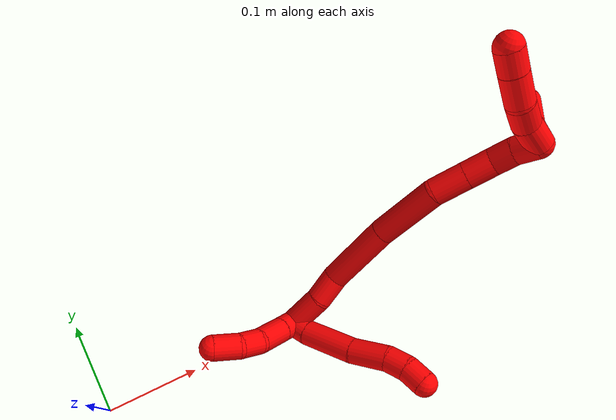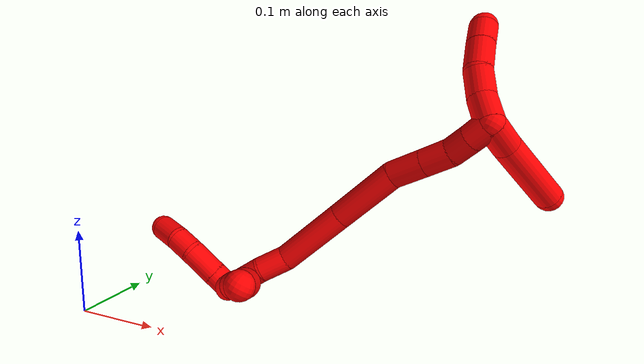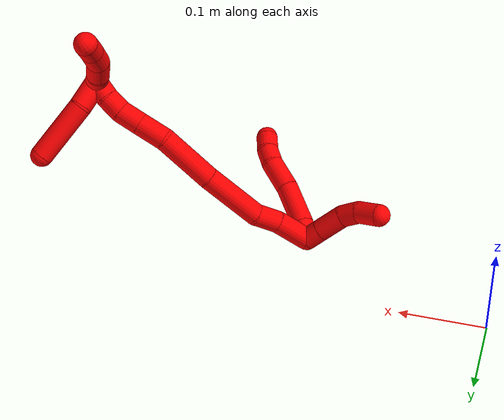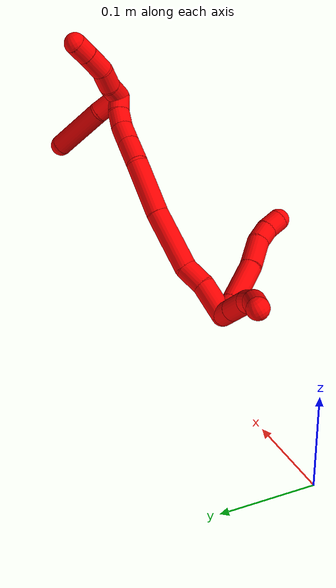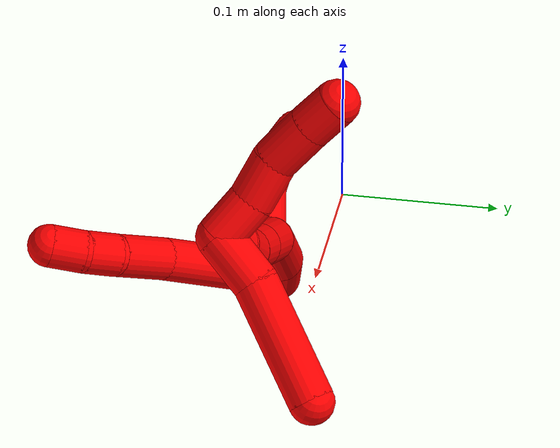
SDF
<sdf version="1.7">
 <world name="default">
  <model name="photoneo_s_sensor">
   <static>1</static>
   <pose>0 0 2 1.57079 1.57079 3.14159</pose>
   <link name="link">
    <inertial><mass>0.1</mass></inertial>
    <sensor name="sensor" type="depth">
     <update_rate>30</update_rate>
     <camera>
      <horizontal_fov>1.22</horizontal_fov>
      <image><width>1920</width><height>1200</height><format>B8G8R8</format></image>
      <clip><near>0.1</near><far>4</far></clip>
      <depth_camera><output>points</output></depth_camera>
     </camera>
     <plugin name="camera_plugin" filename="libgazebo_ros_depth_camera.so">
      <baseline>0.2</baseline>
      <alwaysOn>1</alwaysOn>
      <updateRate>0.0</updateRate>
      <cameraName>camera_ir</cameraName>
      <imageTopicName>/camera/color/image_raw</imageTopicName>
      <cameraInfoTopicName>/camera/color/camera_info</cameraInfoTopicName>
      <depthImageTopicName>/camera/depth/image_raw</depthImageTopicName>
      <depthImageCameraInfoTopicName>/camera/depth/camera_info</depthImageCameraInfoTopicName>
      <pointCloudTopicName>/camera/depth/points</pointCloudTopicName>
      <frameName>fr_optical</frameName>
      <pointCloudCutoff>0.1</pointCloudCutoff>
      <pointCloudCutoffMax>2.0</pointCloudCutoffMax>
      <distortionK1>0</distortionK1>
      <distortionK2>0</distortionK2>
      <distortionK3>0</distortionK3>
      <distortionT1>0</distortionT1>
      <distortionT2>0</distortionT2>
      <CxPrime>0</CxPrime>
      <Cx>0</Cx>
      <Cy>0</Cy>
      <focalLength>0</focalLength>
      <hackBaseline>0</hackBaseline>
     </plugin>
    </sensor>
   </link>
  </model>
  <model name="bin">
   <static>1</static>
   <link name="bottom">
    <collision name="collision-bottom">
     <pose>0 0 -0.01 0 -0 0</pose>
     <geometry><box><size>0.8 0.6 0.02</size></box></geometry>
     <surface>
      <friction><ode><mu>100</mu><mu2>100</mu2></ode></friction>
      <contact><collide_bitmask>65535</collide_bitmask></contact>
     </surface>
    </collision>
   </link>
   <link name="west_wall">
    <collision name="collision-west_wall">
     <pose>-0.41 0 0.1 0 -0 0</pose>
     <geometry><box><size>0.02 0.6 0.2</size></box></geometry>
     <surface>
      <friction><ode><mu>100</mu><mu2>100</mu2></ode></friction>
      <contact><collide_bitmask>65535</collide_bitmask></contact>
     </surface>
    </collision>
   </link>
   <link name="east_wall">
    <collision name="collision-east_wall">
     <pose>0.41 0 0.1 0 -0 0</pose>
     <geometry><box><size>0.02 0.6 0.2</size></box></geometry>
     <surface>
      <friction><ode><mu>100</mu><mu2>100</mu2></ode></friction>
      <contact><collide_bitmask>65535</collide_bitmask></contact>
     </surface>
    </collision>
   </link>
   <link name="south_wall">
    <collision name="collision-south_wall">
     <pose>0 -0.31 0.1 0 -0 0</pose>
     <geometry><box><size>0.8 0.02 0.2</size></box></geometry>
     <surface>
      <friction><ode><mu>100</mu><mu2>100</mu2></ode></friction>
      <contact><collide_bitmask>65535</collide_bitmask></contact>
     </surface>
    </collision>
   </link>
   <link name="north_wall">
    <collision name="collision-north_wall">
     <pose>0 0.31 0.1 0 -0 0</pose>
     <geometry><box><size>0.8 0.02 0.2</size></box></geometry>
     <surface>
      <friction><ode><mu>100</mu><mu2>100</mu2></ode></friction>
      <contact><collide_bitmask>65535</collide_bitmask></contact>
     </surface>
    </collision>
   </link>
  </model>
  <model name="2">
   <static>0</static>
   <link name="2">
    <collision name="collision-cylinder-e_1_2_8">
     <pose>0.00474 -0.008796 0.002156 1.33038 0.482184 0.381073</pose>
     <geometry><cylinder><radius>0.0125</radius><length>0.020443</length></cylinder></geometry>
     <surface>
      <friction><ode><mu>1.16</mu><mu2>1.16</mu2><slip1>0</slip1><slip2>0</slip2></ode></friction>
      <contact><ode><kp>1e+06</kp><kd>1</kd><max_vel>0</max_vel><min_depth>0.001</min_depth></ode></contact>
     </surface>
    </collision>
    <visual name="visual-cylinder-e_1_2_8">
     <pose>0.00474 -0.008796 0.002156 1.33038 0.482184 0.381073</pose>
     <geometry><cylinder><radius>0.0125</radius><length>0.020443</length></cylinder></geometry>
     <material><ambient>1 0 0 1</ambient></material>
    </visual>
    <collision name="collision-cylinder-e_2_8_9">
     <pose>0.02344 -0.037795 0.012237 1.19704 0.571635 0.395568</pose>
     <geometry><cylinder><radius>0.0125</radius><length>0.051609</length></cylinder></geometry>
     <surface>
      <friction><ode><mu>1.16</mu><mu2>1.16</mu2><slip1>0</slip1><slip2>0</slip2></ode></friction>
      <contact><ode><kp>1e+06</kp><kd>1</kd><max_vel>0</max_vel><min_depth>0.001</min_depth></ode></contact>
     </surface>
    </collision>
    <visual name="visual-cylinder-e_2_8_9">
     <pose>0.02344 -0.037795 0.012237 1.19704 0.571635 0.395568</pose>
     <geometry><cylinder><radius>0.0125</radius><length>0.051609</length></cylinder></geometry>
     <material><ambient>1 0 0 1</ambient></material>
    </visual>
    <collision name="collision-cylinder-e_3_9_10">
     <pose>0.048675 -0.070449 0.027452 1.04099 0.663289 0.38978</pose>
     <geometry><cylinder><radius>0.0125</radius><length>0.036621</length></cylinder></geometry>
     <surface>
      <friction><ode><mu>1.16</mu><mu2>1.16</mu2><slip1>0</slip1><slip2>0</slip2></ode></friction>
      <contact><ode><kp>1e+06</kp><kd>1</kd><max_vel>0</max_vel><min_depth>0.001</min_depth></ode></contact>
     </surface>
    </collision>
    <visual name="visual-cylinder-e_3_9_10">
     <pose>0.048675 -0.070449 0.027452 1.04099 0.663289 0.38978</pose>
     <geometry><cylinder><radius>0.0125</radius><length>0.036621</length></cylinder></geometry>
     <material><ambient>1 0 0 1</ambient></material>
    </visual>
    <collision name="collision-cylinder-e_4_10_11">
     <pose>0.065453 -0.091426 0.036932 1.31953 0.558816 0.437994</pose>
     <geometry><cylinder><radius>0.0125</radius><length>0.020766</length></cylinder></geometry>
     <surface>
      <friction><ode><mu>1.16</mu><mu2>1.16</mu2><slip1>0</slip1><slip2>0</slip2></ode></friction>
      <contact><ode><kp>1e+06</kp><kd>1</kd><max_vel>0</max_vel><min_depth>0.001</min_depth></ode></contact>
     </surface>
    </collision>
    <visual name="visual-cylinder-e_4_10_11">
     <pose>0.065453 -0.091426 0.036932 1.31953 0.558816 0.437994</pose>
     <geometry><cylinder><radius>0.0125</radius><length>0.020766</length></cylinder></geometry>
     <material><ambient>1 0 0 1</ambient></material>
    </visual>
    <collision name="collision-cylinder-e_5_11_6">
     <pose>0.074817 -0.109473 0.039546 1.52622 0.384709 0.368318</pose>
     <geometry><cylinder><radius>0.0125</radius><length>0.020561</length></cylinder></geometry>
     <surface>
      <friction><ode><mu>1.16</mu><mu2>1.16</mu2><slip1>0</slip1><slip2>0</slip2></ode></friction>
      <contact><ode><kp>1e+06</kp><kd>1</kd><max_vel>0</max_vel><min_depth>0.001</min_depth></ode></contact>
     </surface>
    </collision>
    <visual name="visual-cylinder-e_5_11_6">
     <pose>0.074817 -0.109473 0.039546 1.52622 0.384709 0.368318</pose>
     <geometry><cylinder><radius>0.0125</radius><length>0.020561</length></cylinder></geometry>
     <material><ambient>1 0 0 1</ambient></material>
    </visual>
    <collision name="collision-cylinder-e_1_2_12">
     <pose>-0.008763 -0.004599 0.00241 1.08813 -1.03596 -0.663999</pose>
     <geometry><cylinder><radius>0.0125</radius><length>0.020371</length></cylinder></geometry>
     <surface>
      <friction><ode><mu>1.16</mu><mu2>1.16</mu2><slip1>0</slip1><slip2>0</slip2></ode></friction>
      <contact><ode><kp>1e+06</kp><kd>1</kd><max_vel>0</max_vel><min_depth>0.001</min_depth></ode></contact>
     </surface>
    </collision>
    <visual name="visual-cylinder-e_1_2_12">
     <pose>-0.008763 -0.004599 0.00241 1.08813 -1.03596 -0.663999</pose>
     <geometry><cylinder><radius>0.0125</radius><length>0.020371</length></cylinder></geometry>
     <material><ambient>1 0 0 1</ambient></material>
    </visual>
    <collision name="collision-cylinder-e_2_12_13">
     <pose>-0.03148 -0.016183 0.008685 1.06538 -1.05104 -0.658848</pose>
     <geometry><cylinder><radius>0.0125</radius><length>0.032153</length></cylinder></geometry>
     <surface>
      <friction><ode><mu>1.16</mu><mu2>1.16</mu2><slip1>0</slip1><slip2>0</slip2></ode></friction>
      <contact><ode><kp>1e+06</kp><kd>1</kd><max_vel>0</max_vel><min_depth>0.001</min_depth></ode></contact>
     </surface>
    </collision>
    <visual name="visual-cylinder-e_2_12_13">
     <pose>-0.03148 -0.016183 0.008685 1.06538 -1.05104 -0.658848</pose>
     <geometry><cylinder><radius>0.0125</radius><length>0.032153</length></cylinder></geometry>
     <material><ambient>1 0 0 1</ambient></material>
    </visual>
    <collision name="collision-cylinder-e_3_13_14">
     <pose>-0.055857 -0.024777 0.01387 0.883674 -1.3739 -0.740216</pose>
     <geometry><cylinder><radius>0.0125</radius><length>0.021258</length></cylinder></geometry>
     <surface>
      <friction><ode><mu>1.16</mu><mu2>1.16</mu2><slip1>0</slip1><slip2>0</slip2></ode></friction>
      <contact><ode><kp>1e+06</kp><kd>1</kd><max_vel>0</max_vel><min_depth>0.001</min_depth></ode></contact>
     </surface>
    </collision>
    <visual name="visual-cylinder-e_3_13_14">
     <pose>-0.055857 -0.024777 0.01387 0.883674 -1.3739 -0.740216</pose>
     <geometry><cylinder><radius>0.0125</radius><length>0.021258</length></cylinder></geometry>
     <material><ambient>1 0 0 1</ambient></material>
    </visual>
    <collision name="collision-cylinder-e_4_14_5">
     <pose>-0.079247 -0.024501 0.014781 -1.78401 -1.42321 1.63746</pose>
     <geometry><cylinder><radius>0.0125</radius><length>0.026218</length></cylinder></geometry>
     <surface>
      <friction><ode><mu>1.16</mu><mu2>1.16</mu2><slip1>0</slip1><slip2>0</slip2></ode></friction>
      <contact><ode><kp>1e+06</kp><kd>1</kd><max_vel>0</max_vel><min_depth>0.001</min_depth></ode></contact>
     </surface>
    </collision>
    <visual name="visual-cylinder-e_4_14_5">
     <pose>-0.079247 -0.024501 0.014781 -1.78401 -1.42321 1.63746</pose>
     <geometry><cylinder><radius>0.0125</radius><length>0.026218</length></cylinder></geometry>
     <material><ambient>1 0 0 1</ambient></material>
    </visual>
    <collision name="collision-cylinder-e_1_2_15">
     <pose>0.010739 -5.9e-05 0.016848 0.003511 0.567475 0.001024</pose>
     <geometry><cylinder><radius>0.0125</radius><length>0.03996</length></cylinder></geometry>
     <surface>
      <friction><ode><mu>1.16</mu><mu2>1.16</mu2><slip1>0</slip1><slip2>0</slip2></ode></friction>
      <contact><ode><kp>1e+06</kp><kd>1</kd><max_vel>0</max_vel><min_depth>0.001</min_depth></ode></contact>
     </surface>
    </collision>
    <visual name="visual-cylinder-e_1_2_15">
     <pose>0.010739 -5.9e-05 0.016848 0.003511 0.567475 0.001024</pose>
     <geometry><cylinder><radius>0.0125</radius><length>0.03996</length></cylinder></geometry>
     <material><ambient>1 0 0 1</ambient></material>
    </visual>
    <collision name="collision-cylinder-e_2_15_16">
     <pose>0.028866 0.002968 0.04516 -0.262992 0.556603 -0.075541</pose>
     <geometry><cylinder><radius>0.0125</radius><length>0.027965</length></cylinder></geometry>
     <surface>
      <friction><ode><mu>1.16</mu><mu2>1.16</mu2><slip1>0</slip1><slip2>0</slip2></ode></friction>
      <contact><ode><kp>1e+06</kp><kd>1</kd><max_vel>0</max_vel><min_depth>0.001</min_depth></ode></contact>
     </surface>
    </collision>
    <visual name="visual-cylinder-e_2_15_16">
     <pose>0.028866 0.002968 0.04516 -0.262992 0.556603 -0.075541</pose>
     <geometry><cylinder><radius>0.0125</radius><length>0.027965</length></cylinder></geometry>
     <material><ambient>1 0 0 1</ambient></material>
    </visual>
    <collision name="collision-cylinder-e_3_16_17">
     <pose>0.051417 0.00336 0.087916 0.085899 0.449807 0.019663</pose>
     <geometry><cylinder><radius>0.0125</radius><length>0.069755</length></cylinder></geometry>
     <surface>
      <friction><ode><mu>1.16</mu><mu2>1.16</mu2><slip1>0</slip1><slip2>0</slip2></ode></friction>
      <contact><ode><kp>1e+06</kp><kd>1</kd><max_vel>0</max_vel><min_depth>0.001</min_depth></ode></contact>
     </surface>
    </collision>
    <visual name="visual-cylinder-e_3_16_17">
     <pose>0.051417 0.00336 0.087916 0.085899 0.449807 0.019663</pose>
     <geometry><cylinder><radius>0.0125</radius><length>0.069755</length></cylinder></geometry>
     <material><ambient>1 0 0 1</ambient></material>
    </visual>
    <collision name="collision-cylinder-e_4_17_18">
     <pose>0.081375 -0.004791 0.147069 0.193411 0.480386 0.04751</pose>
     <geometry><cylinder><radius>0.0125</radius><length>0.064026</length></cylinder></geometry>
     <surface>
      <friction><ode><mu>1.16</mu><mu2>1.16</mu2><slip1>0</slip1><slip2>0</slip2></ode></friction>
      <contact><ode><kp>1e+06</kp><kd>1</kd><max_vel>0</max_vel><min_depth>0.001</min_depth></ode></contact>
     </surface>
    </collision>
    <visual name="visual-cylinder-e_4_17_18">
     <pose>0.081375 -0.004791 0.147069 0.193411 0.480386 0.04751</pose>
     <geometry><cylinder><radius>0.0125</radius><length>0.064026</length></cylinder></geometry>
     <material><ambient>1 0 0 1</ambient></material>
    </visual>
    <collision name="collision-cylinder-e_5_18_19">
     <pose>0.107314 -0.012885 0.185717 0.239748 0.787183 0.099954</pose>
     <geometry><cylinder><radius>0.0125</radius><length>0.031467</length></cylinder></geometry>
     <surface>
      <friction><ode><mu>1.16</mu><mu2>1.16</mu2><slip1>0</slip1><slip2>0</slip2></ode></friction>
      <contact><ode><kp>1e+06</kp><kd>1</kd><max_vel>0</max_vel><min_depth>0.001</min_depth></ode></contact>
     </surface>
    </collision>
    <visual name="visual-cylinder-e_5_18_19">
     <pose>0.107314 -0.012885 0.185717 0.239748 0.787183 0.099954</pose>
     <geometry><cylinder><radius>0.0125</radius><length>0.031467</length></cylinder></geometry>
     <material><ambient>1 0 0 1</ambient></material>
    </visual>
    <collision name="collision-cylinder-e_6_19_20">
     <pose>0.127345 -0.017709 0.205226 0.245642 0.77947 0.10132</pose>
     <geometry><cylinder><radius>0.0125</radius><length>0.025282</length></cylinder></geometry>
     <surface>
      <friction><ode><mu>1.16</mu><mu2>1.16</mu2><slip1>0</slip1><slip2>0</slip2></ode></friction>
      <contact><ode><kp>1e+06</kp><kd>1</kd><max_vel>0</max_vel><min_depth>0.001</min_depth></ode></contact>
     </surface>
    </collision>
    <visual name="visual-cylinder-e_6_19_20">
     <pose>0.127345 -0.017709 0.205226 0.245642 0.77947 0.10132</pose>
     <geometry><cylinder><radius>0.0125</radius><length>0.025282</length></cylinder></geometry>
     <material><ambient>1 0 0 1</ambient></material>
    </visual>
    <collision name="collision-cylinder-e_7_20_21">
     <pose>0.141677 -0.023226 0.222177 0.384571 0.550266 0.109809</pose>
     <geometry><cylinder><radius>0.0125</radius><length>0.020831</length></cylinder></geometry>
     <surface>
      <friction><ode><mu>1.16</mu><mu2>1.16</mu2><slip1>0</slip1><slip2>0</slip2></ode></friction>
      <contact><ode><kp>1e+06</kp><kd>1</kd><max_vel>0</max_vel><min_depth>0.001</min_depth></ode></contact>
     </surface>
    </collision>
    <visual name="visual-cylinder-e_7_20_21">
     <pose>0.141677 -0.023226 0.222177 0.384571 0.550266 0.109809</pose>
     <geometry><cylinder><radius>0.0125</radius><length>0.020831</length></cylinder></geometry>
     <material><ambient>1 0 0 1</ambient></material>
    </visual>
    <collision name="collision-cylinder-e_8_21_1">
     <pose>0.152492 -0.031747 0.237583 0.626177 0.544982 0.18044</pose>
     <geometry><cylinder><radius>0.0125</radius><length>0.020715</length></cylinder></geometry>
     <surface>
      <friction><ode><mu>1.16</mu><mu2>1.16</mu2><slip1>0</slip1><slip2>0</slip2></ode></friction>
      <contact><ode><kp>1e+06</kp><kd>1</kd><max_vel>0</max_vel><min_depth>0.001</min_depth></ode></contact>
     </surface>
    </collision>
    <visual name="visual-cylinder-e_8_21_1">
     <pose>0.152492 -0.031747 0.237583 0.626177 0.544982 0.18044</pose>
     <geometry><cylinder><radius>0.0125</radius><length>0.020715</length></cylinder></geometry>
     <material><ambient>1 0 0 1</ambient></material>
    </visual>
    <collision name="collision-cylinder-e_1_1_22">
     <pose>0.148675 -0.033838 0.253557 -0.338807 -0.777764 0.13994</pose>
     <geometry><cylinder><radius>0.0125</radius><length>0.026182</length></cylinder></geometry>
     <surface>
      <friction><ode><mu>1.16</mu><mu2>1.16</mu2><slip1>0</slip1><slip2>0</slip2></ode></friction>
      <contact><ode><kp>1e+06</kp><kd>1</kd><max_vel>0</max_vel><min_depth>0.001</min_depth></ode></contact>
     </surface>
    </collision>
    <visual name="visual-cylinder-e_1_1_22">
     <pose>0.148675 -0.033838 0.253557 -0.338807 -0.777764 0.13994</pose>
     <geometry><cylinder><radius>0.0125</radius><length>0.026182</length></cylinder></geometry>
     <material><ambient>1 0 0 1</ambient></material>
    </visual>
    <collision name="collision-cylinder-e_2_22_23">
     <pose>0.13182 -0.030267 0.272514 -0.046269 -0.646059 0.015491</pose>
     <geometry><cylinder><radius>0.0125</radius><length>0.025477</length></cylinder></geometry>
     <surface>
      <friction><ode><mu>1.16</mu><mu2>1.16</mu2><slip1>0</slip1><slip2>0</slip2></ode></friction>
      <contact><ode><kp>1e+06</kp><kd>1</kd><max_vel>0</max_vel><min_depth>0.001</min_depth></ode></contact>
     </surface>
    </collision>
    <visual name="visual-cylinder-e_2_22_23">
     <pose>0.13182 -0.030267 0.272514 -0.046269 -0.646059 0.015491</pose>
     <geometry><cylinder><radius>0.0125</radius><length>0.025477</length></cylinder></geometry>
     <material><ambient>1 0 0 1</ambient></material>
    </visual>
    <collision name="collision-cylinder-e_3_23_24">
     <pose>0.117975 -0.025829 0.294365 -0.327211 -0.463883 0.077942</pose>
     <geometry><cylinder><radius>0.0125</radius><length>0.027608</length></cylinder></geometry>
     <surface>
      <friction><ode><mu>1.16</mu><mu2>1.16</mu2><slip1>0</slip1><slip2>0</slip2></ode></friction>
      <contact><ode><kp>1e+06</kp><kd>1</kd><max_vel>0</max_vel><min_depth>0.001</min_depth></ode></contact>
     </surface>
    </collision>
    <visual name="visual-cylinder-e_3_23_24">
     <pose>0.117975 -0.025829 0.294365 -0.327211 -0.463883 0.077942</pose>
     <geometry><cylinder><radius>0.0125</radius><length>0.027608</length></cylinder></geometry>
     <material><ambient>1 0 0 1</ambient></material>
    </visual>
    <collision name="collision-cylinder-e_4_24_4">
     <pose>0.107451 -0.018528 0.314855 -0.362033 -0.432818 0.080431</pose>
     <geometry><cylinder><radius>0.0125</radius><length>0.020733</length></cylinder></geometry>
     <surface>
      <friction><ode><mu>1.16</mu><mu2>1.16</mu2><slip1>0</slip1><slip2>0</slip2></ode></friction>
      <contact><ode><kp>1e+06</kp><kd>1</kd><max_vel>0</max_vel><min_depth>0.001</min_depth></ode></contact>
     </surface>
    </collision>
    <visual name="visual-cylinder-e_4_24_4">
     <pose>0.107451 -0.018528 0.314855 -0.362033 -0.432818 0.080431</pose>
     <geometry><cylinder><radius>0.0125</radius><length>0.020733</length></cylinder></geometry>
     <material><ambient>1 0 0 1</ambient></material>
    </visual>
    <collision name="collision-cylinder-e_1_1_25">
     <pose>0.16376 -0.022714 0.242214 -1.7479 0.387573 -0.46066</pose>
     <geometry><cylinder><radius>0.0125</radius><length>0.031215</length></cylinder></geometry>
     <surface>
      <friction><ode><mu>1.16</mu><mu2>1.16</mu2><slip1>0</slip1><slip2>0</slip2></ode></friction>
      <contact><ode><kp>1e+06</kp><kd>1</kd><max_vel>0</max_vel><min_depth>0.001</min_depth></ode></contact>
     </surface>
    </collision>
    <visual name="visual-cylinder-e_1_1_25">
     <pose>0.16376 -0.022714 0.242214 -1.7479 0.387573 -0.46066</pose>
     <geometry><cylinder><radius>0.0125</radius><length>0.031215</length></cylinder></geometry>
     <material><ambient>1 0 0 1</ambient></material>
    </visual>
    <collision name="collision-cylinder-e_2_25_3">
     <pose>0.189434 0.018589 0.23202 -1.84606 0.612585 -0.791738</pose>
     <geometry><cylinder><radius>0.0125</radius><length>0.068785</length></cylinder></geometry>
     <surface>
      <friction><ode><mu>1.16</mu><mu2>1.16</mu2><slip1>0</slip1><slip2>0</slip2></ode></friction>
      <contact><ode><kp>1e+06</kp><kd>1</kd><max_vel>0</max_vel><min_depth>0.001</min_depth></ode></contact>
     </surface>
    </collision>
    <visual name="visual-cylinder-e_2_25_3">
     <pose>0.189434 0.018589 0.23202 -1.84606 0.612585 -0.791738</pose>
     <geometry><cylinder><radius>0.0125</radius><length>0.068785</length></cylinder></geometry>
     <material><ambient>1 0 0 1</ambient></material>
    </visual>
    <collision name="collision-sphere-3">
     <pose>0.209209 0.045669 0.224372 0 -0 0</pose>
     <geometry><sphere><radius>0.0125</radius></sphere></geometry>
     <surface>
      <friction><ode><mu>1.16</mu><mu2>1.16</mu2><slip1>0</slip1><slip2>0</slip2></ode></friction>
      <contact><ode><kp>1e+06</kp><kd>1</kd><max_vel>0</max_vel><min_depth>0.001</min_depth></ode></contact>
     </surface>
    </collision>
    <visual name="visual-sphere-3">
     <pose>0.209209 0.045669 0.224372 0 -0 0</pose>
     <geometry><sphere><radius>0.0125</radius></sphere></geometry>
     <material><ambient>1 0 0 1</ambient></material>
    </visual>
    <collision name="collision-sphere-25">
     <pose>0.169659 -0.00849 0.239668 0 -0 0</pose>
     <geometry><sphere><radius>0.0125</radius></sphere></geometry>
     <surface>
      <friction><ode><mu>1.16</mu><mu2>1.16</mu2><slip1>0</slip1><slip2>0</slip2></ode></friction>
      <contact><ode><kp>1e+06</kp><kd>1</kd><max_vel>0</max_vel><min_depth>0.001</min_depth></ode></contact>
     </surface>
    </collision>
    <visual name="visual-sphere-25">
     <pose>0.169659 -0.00849 0.239668 0 -0 0</pose>
     <geometry><sphere><radius>0.0125</radius></sphere></geometry>
     <material><ambient>1 0 0 1</ambient></material>
    </visual>
    <collision name="collision-sphere-4">
     <pose>0.103103 -0.015195 0.323656 0 -0 0</pose>
     <geometry><sphere><radius>0.0125</radius></sphere></geometry>
     <surface>
      <friction><ode><mu>1.16</mu><mu2>1.16</mu2><slip1>0</slip1><slip2>0</slip2></ode></friction>
      <contact><ode><kp>1e+06</kp><kd>1</kd><max_vel>0</max_vel><min_depth>0.001</min_depth></ode></contact>
     </surface>
    </collision>
    <visual name="visual-sphere-4">
     <pose>0.103103 -0.015195 0.323656 0 -0 0</pose>
     <geometry><sphere><radius>0.0125</radius></sphere></geometry>
     <material><ambient>1 0 0 1</ambient></material>
    </visual>
    <collision name="collision-sphere-24">
     <pose>0.111799 -0.021861 0.306055 0 -0 0</pose>
     <geometry><sphere><radius>0.0125</radius></sphere></geometry>
     <surface>
      <friction><ode><mu>1.16</mu><mu2>1.16</mu2><slip1>0</slip1><slip2>0</slip2></ode></friction>
      <contact><ode><kp>1e+06</kp><kd>1</kd><max_vel>0</max_vel><min_depth>0.001</min_depth></ode></contact>
     </surface>
    </collision>
    <visual name="visual-sphere-24">
     <pose>0.111799 -0.021861 0.306055 0 -0 0</pose>
     <geometry><sphere><radius>0.0125</radius></sphere></geometry>
     <material><ambient>1 0 0 1</ambient></material>
    </visual>
    <collision name="collision-sphere-23">
     <pose>0.124151 -0.029797 0.282674 0 -0 0</pose>
     <geometry><sphere><radius>0.0125</radius></sphere></geometry>
     <surface>
      <friction><ode><mu>1.16</mu><mu2>1.16</mu2><slip1>0</slip1><slip2>0</slip2></ode></friction>
      <contact><ode><kp>1e+06</kp><kd>1</kd><max_vel>0</max_vel><min_depth>0.001</min_depth></ode></contact>
     </surface>
    </collision>
    <visual name="visual-sphere-23">
     <pose>0.124151 -0.029797 0.282674 0 -0 0</pose>
     <geometry><sphere><radius>0.0125</radius></sphere></geometry>
     <material><ambient>1 0 0 1</ambient></material>
    </visual>
    <collision name="collision-sphere-22">
     <pose>0.139489 -0.030738 0.262354 0 -0 0</pose>
     <geometry><sphere><radius>0.0125</radius></sphere></geometry>
     <surface>
      <friction><ode><mu>1.16</mu><mu2>1.16</mu2><slip1>0</slip1><slip2>0</slip2></ode></friction>
      <contact><ode><kp>1e+06</kp><kd>1</kd><max_vel>0</max_vel><min_depth>0.001</min_depth></ode></contact>
     </surface>
    </collision>
    <visual name="visual-sphere-22">
     <pose>0.139489 -0.030738 0.262354 0 -0 0</pose>
     <geometry><sphere><radius>0.0125</radius></sphere></geometry>
     <material><ambient>1 0 0 1</ambient></material>
    </visual>
    <collision name="collision-sphere-1">
     <pose>0.157861 -0.036938 0.24476 0 -0 0</pose>
     <geometry><sphere><radius>0.0125</radius></sphere></geometry>
     <surface>
      <friction><ode><mu>1.16</mu><mu2>1.16</mu2><slip1>0</slip1><slip2>0</slip2></ode></friction>
      <contact><ode><kp>1e+06</kp><kd>1</kd><max_vel>0</max_vel><min_depth>0.001</min_depth></ode></contact>
     </surface>
    </collision>
    <visual name="visual-sphere-1">
     <pose>0.157861 -0.036938 0.24476 0 -0 0</pose>
     <geometry><sphere><radius>0.0125</radius></sphere></geometry>
     <material><ambient>1 0 0 1</ambient></material>
    </visual>
    <collision name="collision-sphere-21">
     <pose>0.147123 -0.026557 0.230407 0 -0 0</pose>
     <geometry><sphere><radius>0.0125</radius></sphere></geometry>
     <surface>
      <friction><ode><mu>1.16</mu><mu2>1.16</mu2><slip1>0</slip1><slip2>0</slip2></ode></friction>
      <contact><ode><kp>1e+06</kp><kd>1</kd><max_vel>0</max_vel><min_depth>0.001</min_depth></ode></contact>
     </surface>
    </collision>
    <visual name="visual-sphere-21">
     <pose>0.147123 -0.026557 0.230407 0 -0 0</pose>
     <geometry><sphere><radius>0.0125</radius></sphere></geometry>
     <material><ambient>1 0 0 1</ambient></material>
    </visual>
    <collision name="collision-sphere-6">
     <pose>0.078675 -0.118992 0.03997 0 -0 0</pose>
     <geometry><sphere><radius>0.0125</radius></sphere></geometry>
     <surface>
      <friction><ode><mu>1.16</mu><mu2>1.16</mu2><slip1>0</slip1><slip2>0</slip2></ode></friction>
      <contact><ode><kp>1e+06</kp><kd>1</kd><max_vel>0</max_vel><min_depth>0.001</min_depth></ode></contact>
     </surface>
    </collision>
    <visual name="visual-sphere-6">
     <pose>0.078675 -0.118992 0.03997 0 -0 0</pose>
     <geometry><sphere><radius>0.0125</radius></sphere></geometry>
     <material><ambient>1 0 0 1</ambient></material>
    </visual>
    <collision name="collision-sphere-11">
     <pose>0.070958 -0.099953 0.039121 0 -0 0</pose>
     <geometry><sphere><radius>0.0125</radius></sphere></geometry>
     <surface>
      <friction><ode><mu>1.16</mu><mu2>1.16</mu2><slip1>0</slip1><slip2>0</slip2></ode></friction>
      <contact><ode><kp>1e+06</kp><kd>1</kd><max_vel>0</max_vel><min_depth>0.001</min_depth></ode></contact>
     </surface>
    </collision>
    <visual name="visual-sphere-11">
     <pose>0.070958 -0.099953 0.039121 0 -0 0</pose>
     <geometry><sphere><radius>0.0125</radius></sphere></geometry>
     <material><ambient>1 0 0 1</ambient></material>
    </visual>
    <collision name="collision-sphere-10">
     <pose>0.059948 -0.082899 0.034743 0 -0 0</pose>
     <geometry><sphere><radius>0.0125</radius></sphere></geometry>
     <surface>
      <friction><ode><mu>1.16</mu><mu2>1.16</mu2><slip1>0</slip1><slip2>0</slip2></ode></friction>
      <contact><ode><kp>1e+06</kp><kd>1</kd><max_vel>0</max_vel><min_depth>0.001</min_depth></ode></contact>
     </surface>
    </collision>
    <visual name="visual-sphere-10">
     <pose>0.059948 -0.082899 0.034743 0 -0 0</pose>
     <geometry><sphere><radius>0.0125</radius></sphere></geometry>
     <material><ambient>1 0 0 1</ambient></material>
    </visual>
    <collision name="collision-sphere-9">
     <pose>0.037401 -0.057999 0.02016 0 -0 0</pose>
     <geometry><sphere><radius>0.0125</radius></sphere></geometry>
     <surface>
      <friction><ode><mu>1.16</mu><mu2>1.16</mu2><slip1>0</slip1><slip2>0</slip2></ode></friction>
      <contact><ode><kp>1e+06</kp><kd>1</kd><max_vel>0</max_vel><min_depth>0.001</min_depth></ode></contact>
     </surface>
    </collision>
    <visual name="visual-sphere-9">
     <pose>0.037401 -0.057999 0.02016 0 -0 0</pose>
     <geometry><sphere><radius>0.0125</radius></sphere></geometry>
     <material><ambient>1 0 0 1</ambient></material>
    </visual>
    <collision name="collision-sphere-2">
     <geometry><sphere><radius>0.0125</radius></sphere></geometry>
     <surface>
      <friction><ode><mu>1.16</mu><mu2>1.16</mu2><slip1>0</slip1><slip2>0</slip2></ode></friction>
      <contact><ode><kp>1e+06</kp><kd>1</kd><max_vel>0</max_vel><min_depth>0.001</min_depth></ode></contact>
     </surface>
    </collision>
    <visual name="visual-sphere-2">
     <geometry><sphere><radius>0.0125</radius></sphere></geometry>
     <material><ambient>1 0 0 1</ambient></material>
    </visual>
    <collision name="collision-sphere-19">
     <pose>0.118459 -0.015522 0.196505 0 -0 0</pose>
     <geometry><sphere><radius>0.0125</radius></sphere></geometry>
     <surface>
      <friction><ode><mu>1.16</mu><mu2>1.16</mu2><slip1>0</slip1><slip2>0</slip2></ode></friction>
      <contact><ode><kp>1e+06</kp><kd>1</kd><max_vel>0</max_vel><min_depth>0.001</min_depth></ode></contact>
     </surface>
    </collision>
    <visual name="visual-sphere-19">
     <pose>0.118459 -0.015522 0.196505 0 -0 0</pose>
     <geometry><sphere><radius>0.0125</radius></sphere></geometry>
     <material><ambient>1 0 0 1</ambient></material>
    </visual>
    <collision name="collision-sphere-8">
     <pose>0.00948 -0.017591 0.004313 0 -0 0</pose>
     <geometry><sphere><radius>0.0125</radius></sphere></geometry>
     <surface>
      <friction><ode><mu>1.16</mu><mu2>1.16</mu2><slip1>0</slip1><slip2>0</slip2></ode></friction>
      <contact><ode><kp>1e+06</kp><kd>1</kd><max_vel>0</max_vel><min_depth>0.001</min_depth></ode></contact>
     </surface>
    </collision>
    <visual name="visual-sphere-8">
     <pose>0.00948 -0.017591 0.004313 0 -0 0</pose>
     <geometry><sphere><radius>0.0125</radius></sphere></geometry>
     <material><ambient>1 0 0 1</ambient></material>
    </visual>
    <collision name="collision-sphere-12">
     <pose>-0.017527 -0.009197 0.004819 0 -0 0</pose>
     <geometry><sphere><radius>0.0125</radius></sphere></geometry>
     <surface>
      <friction><ode><mu>1.16</mu><mu2>1.16</mu2><slip1>0</slip1><slip2>0</slip2></ode></friction>
      <contact><ode><kp>1e+06</kp><kd>1</kd><max_vel>0</max_vel><min_depth>0.001</min_depth></ode></contact>
     </surface>
    </collision>
    <visual name="visual-sphere-12">
     <pose>-0.017527 -0.009197 0.004819 0 -0 0</pose>
     <geometry><sphere><radius>0.0125</radius></sphere></geometry>
     <material><ambient>1 0 0 1</ambient></material>
    </visual>
    <collision name="collision-sphere-13">
     <pose>-0.045434 -0.02317 0.012551 0 -0 0</pose>
     <geometry><sphere><radius>0.0125</radius></sphere></geometry>
     <surface>
      <friction><ode><mu>1.16</mu><mu2>1.16</mu2><slip1>0</slip1><slip2>0</slip2></ode></friction>
      <contact><ode><kp>1e+06</kp><kd>1</kd><max_vel>0</max_vel><min_depth>0.001</min_depth></ode></contact>
     </surface>
    </collision>
    <visual name="visual-sphere-13">
     <pose>-0.045434 -0.02317 0.012551 0 -0 0</pose>
     <geometry><sphere><radius>0.0125</radius></sphere></geometry>
     <material><ambient>1 0 0 1</ambient></material>
    </visual>
    <collision name="collision-sphere-14">
     <pose>-0.066281 -0.026385 0.015189 0 -0 0</pose>
     <geometry><sphere><radius>0.0125</radius></sphere></geometry>
     <surface>
      <friction><ode><mu>1.16</mu><mu2>1.16</mu2><slip1>0</slip1><slip2>0</slip2></ode></friction>
      <contact><ode><kp>1e+06</kp><kd>1</kd><max_vel>0</max_vel><min_depth>0.001</min_depth></ode></contact>
     </surface>
    </collision>
    <visual name="visual-sphere-14">
     <pose>-0.066281 -0.026385 0.015189 0 -0 0</pose>
     <geometry><sphere><radius>0.0125</radius></sphere></geometry>
     <material><ambient>1 0 0 1</ambient></material>
    </visual>
    <collision name="collision-sphere-5">
     <pose>-0.092213 -0.022617 0.014373 0 -0 0</pose>
     <geometry><sphere><radius>0.0125</radius></sphere></geometry>
     <surface>
      <friction><ode><mu>1.16</mu><mu2>1.16</mu2><slip1>0</slip1><slip2>0</slip2></ode></friction>
      <contact><ode><kp>1e+06</kp><kd>1</kd><max_vel>0</max_vel><min_depth>0.001</min_depth></ode></contact>
     </surface>
    </collision>
    <visual name="visual-sphere-5">
     <pose>-0.092213 -0.022617 0.014373 0 -0 0</pose>
     <geometry><sphere><radius>0.0125</radius></sphere></geometry>
     <material><ambient>1 0 0 1</ambient></material>
    </visual>
    <collision name="collision-sphere-15">
     <pose>0.021479 -0.000118 0.033696 0 -0 0</pose>
     <geometry><sphere><radius>0.0125</radius></sphere></geometry>
     <surface>
      <friction><ode><mu>1.16</mu><mu2>1.16</mu2><slip1>0</slip1><slip2>0</slip2></ode></friction>
      <contact><ode><kp>1e+06</kp><kd>1</kd><max_vel>0</max_vel><min_depth>0.001</min_depth></ode></contact>
     </surface>
    </collision>
    <visual name="visual-sphere-15">
     <pose>0.021479 -0.000118 0.033696 0 -0 0</pose>
     <geometry><sphere><radius>0.0125</radius></sphere></geometry>
     <material><ambient>1 0 0 1</ambient></material>
    </visual>
    <collision name="collision-sphere-16">
     <pose>0.036253 0.006054 0.056624 0 -0 0</pose>
     <geometry><sphere><radius>0.0125</radius></sphere></geometry>
     <surface>
      <friction><ode><mu>1.16</mu><mu2>1.16</mu2><slip1>0</slip1><slip2>0</slip2></ode></friction>
      <contact><ode><kp>1e+06</kp><kd>1</kd><max_vel>0</max_vel><min_depth>0.001</min_depth></ode></contact>
     </surface>
    </collision>
    <visual name="visual-sphere-16">
     <pose>0.036253 0.006054 0.056624 0 -0 0</pose>
     <geometry><sphere><radius>0.0125</radius></sphere></geometry>
     <material><ambient>1 0 0 1</ambient></material>
    </visual>
    <collision name="collision-sphere-17">
     <pose>0.066582 0.000665 0.119209 0 -0 0</pose>
     <geometry><sphere><radius>0.0125</radius></sphere></geometry>
     <surface>
      <friction><ode><mu>1.16</mu><mu2>1.16</mu2><slip1>0</slip1><slip2>0</slip2></ode></friction>
      <contact><ode><kp>1e+06</kp><kd>1</kd><max_vel>0</max_vel><min_depth>0.001</min_depth></ode></contact>
     </surface>
    </collision>
    <visual name="visual-sphere-17">
     <pose>0.066582 0.000665 0.119209 0 -0 0</pose>
     <geometry><sphere><radius>0.0125</radius></sphere></geometry>
     <material><ambient>1 0 0 1</ambient></material>
    </visual>
    <collision name="collision-sphere-18">
     <pose>0.096169 -0.010248 0.174929 0 -0 0</pose>
     <geometry><sphere><radius>0.0125</radius></sphere></geometry>
     <surface>
      <friction><ode><mu>1.16</mu><mu2>1.16</mu2><slip1>0</slip1><slip2>0</slip2></ode></friction>
      <contact><ode><kp>1e+06</kp><kd>1</kd><max_vel>0</max_vel><min_depth>0.001</min_depth></ode></contact>
     </surface>
    </collision>
    <visual name="visual-sphere-18">
     <pose>0.096169 -0.010248 0.174929 0 -0 0</pose>
     <geometry><sphere><radius>0.0125</radius></sphere></geometry>
     <material><ambient>1 0 0 1</ambient></material>
    </visual>
    <collision name="collision-sphere-20">
     <pose>0.13623 -0.019895 0.213948 0 -0 0</pose>
     <geometry><sphere><radius>0.0125</radius></sphere></geometry>
     <surface>
      <friction><ode><mu>1.16</mu><mu2>1.16</mu2><slip1>0</slip1><slip2>0</slip2></ode></friction>
      <contact><ode><kp>1e+06</kp><kd>1</kd><max_vel>0</max_vel><min_depth>0.001</min_depth></ode></contact>
     </surface>
    </collision>
    <visual name="visual-sphere-20">
     <pose>0.13623 -0.019895 0.213948 0 -0 0</pose>
     <geometry><sphere><radius>0.0125</radius></sphere></geometry>
     <material><ambient>1 0 0 1</ambient></material>
    </visual>
    <inertial>
     <pose>0.073531 -0.019752 0.12546 0 -0 0</pose>
     <mass>0.75</mass>
     <inertia>
      <ixx>0.000114</ixx>
      <ixy>0</ixy>
      <ixz>0</ixz>
      <iyy>9.4e-05</iyy>
      <iyz>0</iyz>
      <izz>-2.5e-05</izz>
     </inertia>
    </inertial>
   </link>
   <pose>0.212366 -0.01061 0.073016 -0.438949 0.324196 -0.223771</pose>
  </model>
 </world>
</sdf>
